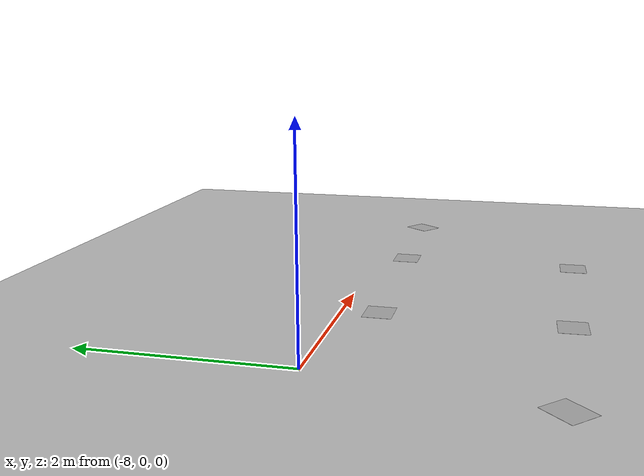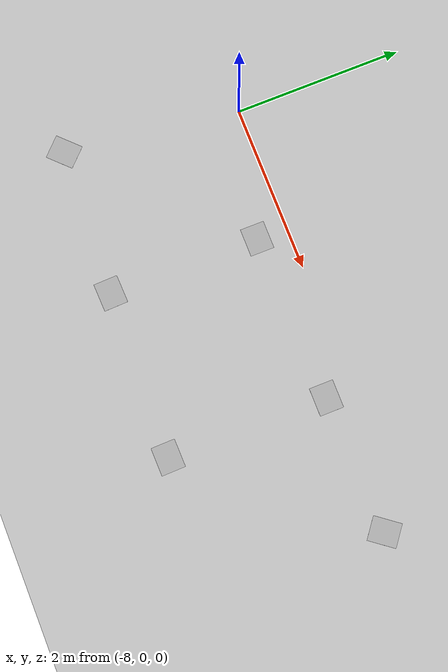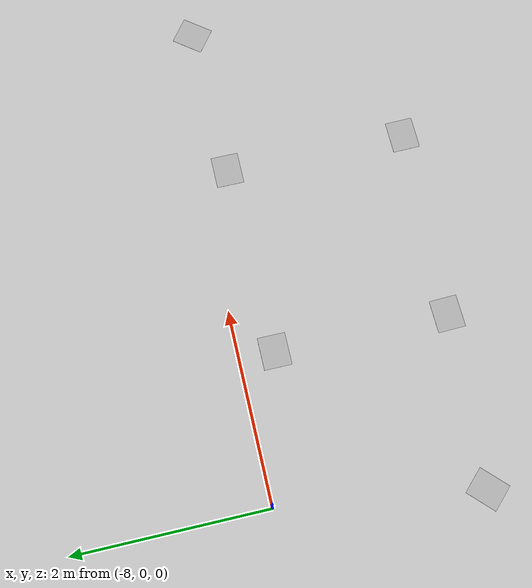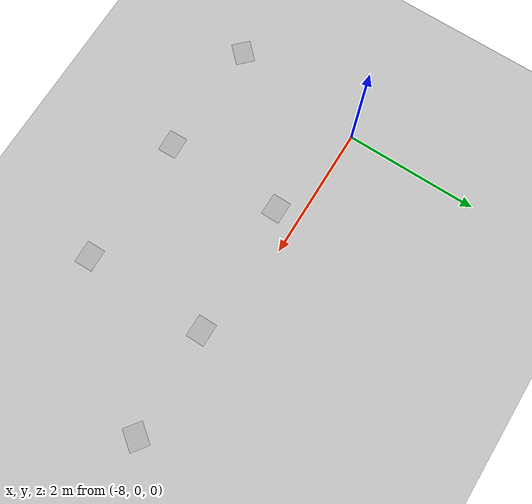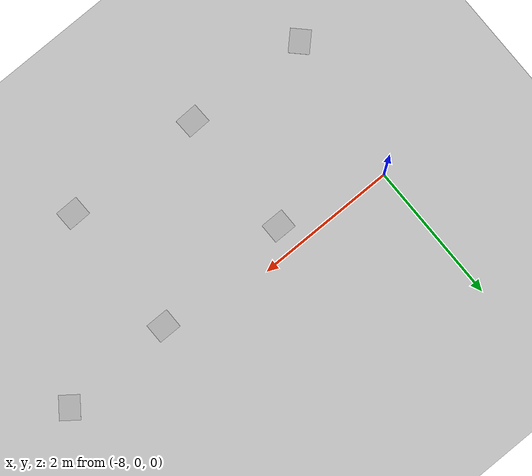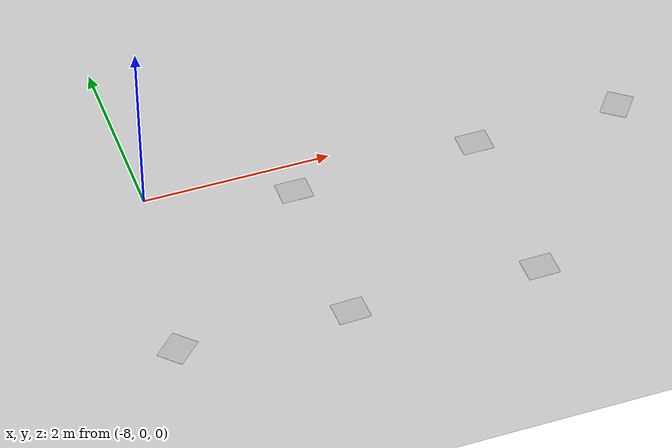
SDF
<sdf version="1.7">
 <world name="default">
  <model name="ground_plane">
   <static>1</static>
   <link name="link">
    <collision name="collision">
     <geometry><plane><normal>0 0 1</normal><size>100 100</size></plane></geometry>
     <surface>
      <contact><collide_bitmask>65535</collide_bitmask></contact>
      <friction><ode><mu>100</mu><mu2>50</mu2></ode></friction>
     </surface>
    </collision>
    <visual name="visual">
     <cast_shadows>0</cast_shadows>
     <geometry><plane><normal>0 0 1</normal><size>100 100</size></plane></geometry>
     <material>
      <script><uri>file://media/materials/scripts/gazebo.material</uri><name>Gazebo/Grey</name></script>
     </material>
    </visual>
   </link>
  </model>
  <light name="sun" type="directional">
   <pose>0 0 10 0 -0 0</pose>
   <diffuse>0.8 0.8 0.8 1</diffuse>
   <specular>0.2 0.2 0.2 1</specular>
   <attenuation>
    <range>1000</range>
    <constant>0.9</constant>
    <linear>0.01</linear>
    <quadratic>0.001</quadratic>
   </attenuation>
   <direction>-0.5 0.1 -0.9</direction>
   <spot><inner_angle>0</inner_angle><outer_angle>0</outer_angle><falloff>0</falloff></spot>
  </light>
  <gravity>0 0 -9.8</gravity>
  <magnetic_field>6e-06 2.3e-05 -4.2e-05</magnetic_field>
  <atmosphere type="adiabatic"/>
  <physics type="ode">
   <max_step_size>0.001</max_step_size>
   <real_time_factor>1</real_time_factor>
   <real_time_update_rate>1000</real_time_update_rate>
  </physics>
  <scene><ambient>0.4 0.4 0.4 1</ambient><background>0.7 0.7 0.7 1</background><shadows>1</shadows></scene>
  <spherical_coordinates>
   <surface_model>EARTH_WGS84</surface_model>
   <latitude_deg>0</latitude_deg>
   <longitude_deg>0</longitude_deg>
   <elevation>0</elevation>
   <heading_deg>0</heading_deg>
  </spherical_coordinates>
  <model name="stag-501">
   <link name="link">
    <inertial>
     <mass>1</mass>
     <inertia><ixx>0.19</ixx><ixy>0</ixy><ixz>0</ixz><iyy>0.19</iyy><iyz>0</iyz><izz>0.19</izz></inertia>
    </inertial>
    <visual name="visual">
     <geometry><box><size>0.335 0.285 0.001</size></box></geometry>
     <material>
      <script>
       <uri>model://TURN-stag-501/material/scripts</uri>
       <uri>model://TURN-stag-501/material/texture</uri>
       <name>stag-501/Diffuse</name>
      </script>
     </material>
    </visual>
    <collision name="collision">
     <geometry><box><size>0.335 0.285 0.001</size></box></geometry>
     <surface>
      <friction>
       <ode><mu>1</mu><mu2>1</mu2><fdir1>0 0 0</fdir1><slip1>0</slip1><slip2>0</slip2></ode>
       <torsional>
        <coefficient>1</coefficient>
        <patch_radius>0</patch_radius>
        <surface_radius>0</surface_radius>
        <use_patch_radius>1</use_patch_radius>
        <ode><slip>0</slip></ode>
       </torsional>
      </friction>
      <bounce><restitution_coefficient>0</restitution_coefficient><threshold>1e+06</threshold></bounce>
      <contact>
       <collide_without_contact>0</collide_without_contact>
       <collide_without_contact_bitmask>1</collide_without_contact_bitmask>
       <collide_bitmask>1</collide_bitmask>
       <ode>
        <soft_cfm>0</soft_cfm>
        <soft_erp>0.2</soft_erp>
        <kp>1e+13</kp>
        <kd>1</kd>
        <max_vel>0.01</max_vel>
        <min_depth>0</min_depth>
       </ode>
       <bullet>
        <split_impulse>1</split_impulse>
        <split_impulse_penetration_threshold>-0.01</split_impulse_penetration_threshold>
        <soft_cfm>0</soft_cfm>
        <soft_erp>0.2</soft_erp>
        <kp>1e+13</kp>
        <kd>1</kd>
       </bullet>
      </contact>
     </surface>
    </collision>
   </link>
   <static>1</static>
   <pose>-6.50347 -0.364978 0 0 -0 0</pose>
  </model>
  <model name="stag-2000">
   <link name="link">
    <inertial>
     <mass>1</mass>
     <inertia><ixx>0.19</ixx><ixy>0</ixy><ixz>0</ixz><iyy>0.19</iyy><iyz>0</iyz><izz>0.19</izz></inertia>
    </inertial>
    <visual name="visual">
     <geometry><box><size>0.335 0.285 0.001</size></box></geometry>
     <material>
      <script>
       <uri>model://GO-stag-2000/material/scripts</uri>
       <uri>model://GO-stag-2000/material/texture</uri>
       <name>stag-2000/Diffuse</name>
      </script>
     </material>
    </visual>
    <collision name="collision">
     <geometry><box><size>0.335 0.285 0.001</size></box></geometry>
     <surface>
      <friction>
       <ode><mu>1</mu><mu2>1</mu2><fdir1>0 0 0</fdir1><slip1>0</slip1><slip2>0</slip2></ode>
       <torsional>
        <coefficient>1</coefficient>
        <patch_radius>0</patch_radius>
        <surface_radius>0</surface_radius>
        <use_patch_radius>1</use_patch_radius>
        <ode><slip>0</slip></ode>
       </torsional>
      </friction>
      <bounce><restitution_coefficient>0</restitution_coefficient><threshold>1e+06</threshold></bounce>
      <contact>
       <collide_without_contact>0</collide_without_contact>
       <collide_without_contact_bitmask>1</collide_without_contact_bitmask>
       <collide_bitmask>1</collide_bitmask>
       <ode>
        <soft_cfm>0</soft_cfm>
        <soft_erp>0.2</soft_erp>
        <kp>1e+13</kp>
        <kd>1</kd>
        <max_vel>0.01</max_vel>
        <min_depth>0</min_depth>
       </ode>
       <bullet>
        <split_impulse>1</split_impulse>
        <split_impulse_penetration_threshold>-0.01</split_impulse_penetration_threshold>
        <soft_cfm>0</soft_cfm>
        <soft_erp>0.2</soft_erp>
        <kp>1e+13</kp>
        <kd>1</kd>
       </bullet>
      </contact>
     </surface>
    </collision>
   </link>
   <static>1</static>
   <pose>-4.50435 -0.316075 0 0 -0 0</pose>
  </model>
  <model name="stag-502">
   <link name="link">
    <inertial>
     <mass>1</mass>
     <inertia><ixx>0.19</ixx><ixy>0</ixy><ixz>0</ixz><iyy>0.19</iyy><iyz>0</iyz><izz>0.19</izz></inertia>
    </inertial>
    <visual name="visual">
     <geometry><box><size>0.335 0.285 0.001</size></box></geometry>
     <material>
      <script>
       <uri>model://TURN-stag-502/material/scripts</uri>
       <uri>model://TURN-stag-502/material/texture</uri>
       <name>stag-502/Diffuse</name>
      </script>
     </material>
    </visual>
    <collision name="collision">
     <geometry><box><size>0.335 0.285 0.001</size></box></geometry>
     <surface>
      <friction>
       <ode><mu>1</mu><mu2>1</mu2><fdir1>0 0 0</fdir1><slip1>0</slip1><slip2>0</slip2></ode>
       <torsional>
        <coefficient>1</coefficient>
        <patch_radius>0</patch_radius>
        <surface_radius>0</surface_radius>
        <use_patch_radius>1</use_patch_radius>
        <ode><slip>0</slip></ode>
       </torsional>
      </friction>
      <bounce><restitution_coefficient>0</restitution_coefficient><threshold>1e+06</threshold></bounce>
      <contact>
       <collide_without_contact>0</collide_without_contact>
       <collide_without_contact_bitmask>1</collide_without_contact_bitmask>
       <collide_bitmask>1</collide_bitmask>
       <ode>
        <soft_cfm>0</soft_cfm>
        <soft_erp>0.2</soft_erp>
        <kp>1e+13</kp>
        <kd>1</kd>
        <max_vel>0.01</max_vel>
        <min_depth>0</min_depth>
       </ode>
       <bullet>
        <split_impulse>1</split_impulse>
        <split_impulse_penetration_threshold>-0.01</split_impulse_penetration_threshold>
        <soft_cfm>0</soft_cfm>
        <soft_erp>0.2</soft_erp>
        <kp>1e+13</kp>
        <kd>1</kd>
       </bullet>
      </contact>
     </surface>
    </collision>
   </link>
   <static>1</static>
   <pose>-2.88404 -0.277196 0 0 0 -2.21927</pose>
  </model>
  <model name="stag-503">
   <link name="link">
    <inertial>
     <mass>1</mass>
     <inertia><ixx>0.19</ixx><ixy>0</ixy><ixz>0</ixz><iyy>0.19</iyy><iyz>0</iyz><izz>0.19</izz></inertia>
    </inertial>
    <visual name="visual">
     <geometry><box><size>0.335 0.285 0.001</size></box></geometry>
     <material>
      <script>
       <uri>model://TURN-stag-503/material/scripts</uri>
       <uri>model://TURN-stag-503/material/texture</uri>
       <name>stag-503/Diffuse</name>
      </script>
     </material>
    </visual>
    <collision name="collision">
     <geometry><box><size>0.335 0.285 0.001</size></box></geometry>
     <surface>
      <friction>
       <ode><mu>1</mu><mu2>1</mu2><fdir1>0 0 0</fdir1><slip1>0</slip1><slip2>0</slip2></ode>
       <torsional>
        <coefficient>1</coefficient>
        <patch_radius>0</patch_radius>
        <surface_radius>0</surface_radius>
        <use_patch_radius>1</use_patch_radius>
        <ode><slip>0</slip></ode>
       </torsional>
      </friction>
      <bounce><restitution_coefficient>0</restitution_coefficient><threshold>1e+06</threshold></bounce>
      <contact>
       <collide_without_contact>0</collide_without_contact>
       <collide_without_contact_bitmask>1</collide_without_contact_bitmask>
       <collide_bitmask>1</collide_bitmask>
       <ode>
        <soft_cfm>0</soft_cfm>
        <soft_erp>0.2</soft_erp>
        <kp>1e+13</kp>
        <kd>1</kd>
        <max_vel>0.01</max_vel>
        <min_depth>0</min_depth>
       </ode>
       <bullet>
        <split_impulse>1</split_impulse>
        <split_impulse_penetration_threshold>-0.01</split_impulse_penetration_threshold>
        <soft_cfm>0</soft_cfm>
        <soft_erp>0.2</soft_erp>
        <kp>1e+13</kp>
        <kd>1</kd>
       </bullet>
      </contact>
     </surface>
    </collision>
   </link>
   <static>1</static>
   <pose>-4.53361 -2.21971 0 0 0 -3.12387</pose>
  </model>
  <model name="stag-2001">
   <link name="link">
    <inertial>
     <mass>1</mass>
     <inertia><ixx>0.19</ixx><ixy>0</ixy><ixz>0</ixz><iyy>0.19</iyy><iyz>0</iyz><izz>0.19</izz></inertia>
    </inertial>
    <visual name="visual">
     <geometry><box><size>0.335 0.285 0.001</size></box></geometry>
     <material>
      <script>
       <uri>model://GO-stag-2001/material/scripts</uri>
       <uri>model://GO-stag-2001/material/texture</uri>
       <name>stag-2001/Diffuse</name>
      </script>
     </material>
    </visual>
    <collision name="collision">
     <geometry><box><size>0.335 0.285 0.001</size></box></geometry>
     <surface>
      <friction>
       <ode><mu>1</mu><mu2>1</mu2><fdir1>0 0 0</fdir1><slip1>0</slip1><slip2>0</slip2></ode>
       <torsional>
        <coefficient>1</coefficient>
        <patch_radius>0</patch_radius>
        <surface_radius>0</surface_radius>
        <use_patch_radius>1</use_patch_radius>
        <ode><slip>0</slip></ode>
       </torsional>
      </friction>
      <bounce><restitution_coefficient>0</restitution_coefficient><threshold>1e+06</threshold></bounce>
      <contact>
       <collide_without_contact>0</collide_without_contact>
       <collide_without_contact_bitmask>1</collide_without_contact_bitmask>
       <collide_bitmask>1</collide_bitmask>
       <ode>
        <soft_cfm>0</soft_cfm>
        <soft_erp>0.2</soft_erp>
        <kp>1e+13</kp>
        <kd>1</kd>
        <max_vel>0.01</max_vel>
        <min_depth>0</min_depth>
       </ode>
       <bullet>
        <split_impulse>1</split_impulse>
        <split_impulse_penetration_threshold>-0.01</split_impulse_penetration_threshold>
        <soft_cfm>0</soft_cfm>
        <soft_erp>0.2</soft_erp>
        <kp>1e+13</kp>
        <kd>1</kd>
       </bullet>
      </contact>
     </surface>
    </collision>
   </link>
   <static>1</static>
   <pose>-6.52216 -2.16119 0 0 0 -3.11052</pose>
  </model>
  <model name="stag-504">
   <link name="link">
    <inertial>
     <mass>1</mass>
     <inertia><ixx>0.19</ixx><ixy>0</ixy><ixz>0</ixz><iyy>0.19</iyy><iyz>0</iyz><izz>0.19</izz></inertia>
    </inertial>
    <visual name="visual">
     <geometry><box><size>0.335 0.285 0.001</size></box></geometry>
     <material>
      <script>
       <uri>model://TURN-stag-504/material/scripts</uri>
       <uri>model://TURN-stag-504/material/texture</uri>
       <name>stag-504/Diffuse</name>
      </script>
     </material>
    </visual>
    <collision name="collision">
     <geometry><box><size>0.335 0.285 0.001</size></box></geometry>
     <surface>
      <friction>
       <ode><mu>1</mu><mu2>1</mu2><fdir1>0 0 0</fdir1><slip1>0</slip1><slip2>0</slip2></ode>
       <torsional>
        <coefficient>1</coefficient>
        <patch_radius>0</patch_radius>
        <surface_radius>0</surface_radius>
        <use_patch_radius>1</use_patch_radius>
        <ode><slip>0</slip></ode>
       </torsional>
      </friction>
      <bounce><restitution_coefficient>0</restitution_coefficient><threshold>1e+06</threshold></bounce>
      <contact>
       <collide_without_contact>0</collide_without_contact>
       <collide_without_contact_bitmask>1</collide_without_contact_bitmask>
       <collide_bitmask>1</collide_bitmask>
       <ode>
        <soft_cfm>0</soft_cfm>
        <soft_erp>0.2</soft_erp>
        <kp>1e+13</kp>
        <kd>1</kd>
        <max_vel>0.01</max_vel>
        <min_depth>0</min_depth>
       </ode>
       <bullet>
        <split_impulse>1</split_impulse>
        <split_impulse_penetration_threshold>-0.01</split_impulse_penetration_threshold>
        <soft_cfm>0</soft_cfm>
        <soft_erp>0.2</soft_erp>
        <kp>1e+13</kp>
        <kd>1</kd>
       </bullet>
      </contact>
     </surface>
    </collision>
   </link>
   <static>1</static>
   <pose>-8.29095 -2.07612 0 0 -0 0.78519</pose>
  </model>
 </world>
</sdf>
